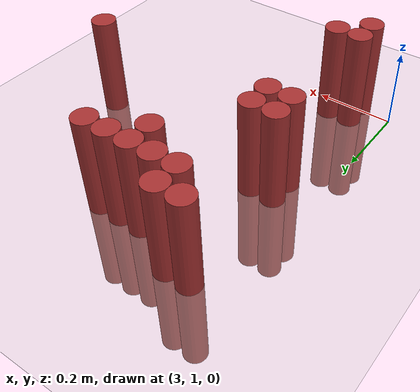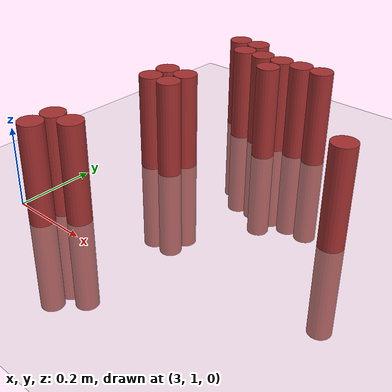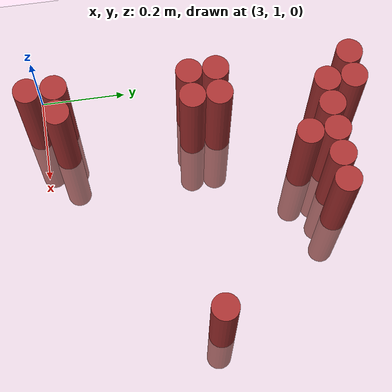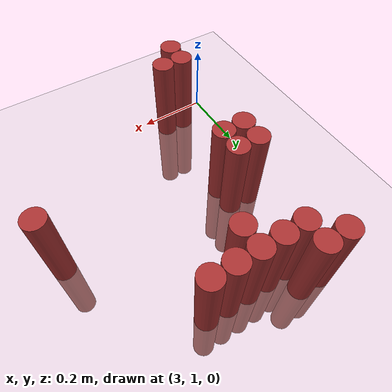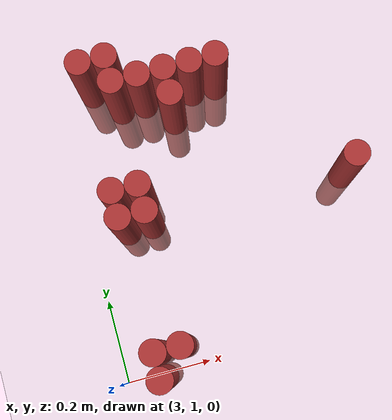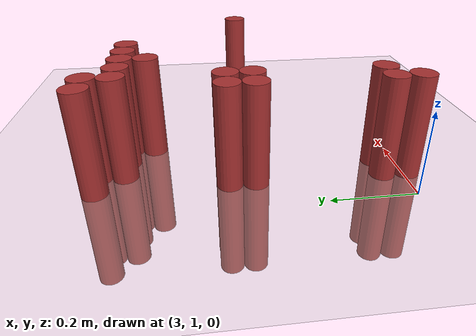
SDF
<sdf version="1.6">
 <world name="default">
  <model name="ground_plane">
   <static>1</static>
   <link name="link">
    <collision name="collision">
     <geometry><plane><normal>0 0 1</normal><size>100 100</size></plane></geometry>
     <surface><friction><ode><mu>100</mu><mu2>50</mu2></ode></friction></surface>
    </collision>
    <visual name="visual">
     <cast_shadows>0</cast_shadows>
     <geometry><plane><normal>0 0 1</normal><size>100 100</size></plane></geometry>
     <material>
      <script><uri>file://media/materials/scripts/gazebo.material</uri><name>Gazebo/Grey</name></script>
     </material>
    </visual>
   </link>
  </model>
  <model name="unit_cylinder_131">
   <static>1</static>
   <pose>3.090000 1.710000 0.000000 0.000000 0.000000 0.000000</pose>
   <link name="link">
    <inertial>
     <mass>1</mass>
     <inertia><ixx>0.145833</ixx><ixy>0</ixy><ixz>0</ixz><iyy>0.145833</iyy><iyz>0</iyz><izz>0.125</izz></inertia>
    </inertial>
    <collision name="collision">
     <geometry><cylinder><radius>0.030000</radius><length>0.5</length></cylinder></geometry>
    </collision>
    <visual name="visual">
     <geometry><cylinder><radius>0.030000</radius><length>0.5</length></cylinder></geometry>
     <material>
      <ambient>0.648000 0.192000 0.192000 1</ambient>
      <diffuse>0.648000 0.192000 0.192000 1</diffuse>
     </material>
     <material>
      <script><name>Gazebo/Grey</name><uri>file://media/materials/scripts/gazebo.material</uri></script>
     </material>
    </visual>
   </link>
  </model>
  <model name="unit_cylinder_132">
   <static>1</static>
   <pose>3.150000 1.710000 0.000000 0.000000 0.000000 0.000000</pose>
   <link name="link">
    <inertial>
     <mass>1</mass>
     <inertia><ixx>0.145833</ixx><ixy>0</ixy><ixz>0</ixz><iyy>0.145833</iyy><iyz>0</iyz><izz>0.125</izz></inertia>
    </inertial>
    <collision name="collision">
     <geometry><cylinder><radius>0.030000</radius><length>0.5</length></cylinder></geometry>
    </collision>
    <visual name="visual">
     <geometry><cylinder><radius>0.030000</radius><length>0.5</length></cylinder></geometry>
     <material>
      <ambient>0.648000 0.192000 0.192000 1</ambient>
      <diffuse>0.648000 0.192000 0.192000 1</diffuse>
     </material>
     <material>
      <script><name>Gazebo/Grey</name><uri>file://media/materials/scripts/gazebo.material</uri></script>
     </material>
    </visual>
   </link>
  </model>
  <model name="unit_cylinder_137">
   <static>1</static>
   <pose>3.150000 1.650000 0.000000 0.000000 0.000000 0.000000</pose>
   <link name="link">
    <inertial>
     <mass>1</mass>
     <inertia><ixx>0.145833</ixx><ixy>0</ixy><ixz>0</ixz><iyy>0.145833</iyy><iyz>0</iyz><izz>0.125</izz></inertia>
    </inertial>
    <collision name="collision">
     <geometry><cylinder><radius>0.030000</radius><length>0.5</length></cylinder></geometry>
    </collision>
    <visual name="visual">
     <geometry><cylinder><radius>0.030000</radius><length>0.5</length></cylinder></geometry>
     <material>
      <ambient>0.648000 0.192000 0.192000 1</ambient>
      <diffuse>0.648000 0.192000 0.192000 1</diffuse>
     </material>
     <material>
      <script><name>Gazebo/Grey</name><uri>file://media/materials/scripts/gazebo.material</uri></script>
     </material>
    </visual>
   </link>
  </model>
  <model name="unit_cylinder_138">
   <static>1</static>
   <pose>3.210000 1.650000 0.000000 0.000000 0.000000 0.000000</pose>
   <link name="link">
    <inertial>
     <mass>1</mass>
     <inertia><ixx>0.145833</ixx><ixy>0</ixy><ixz>0</ixz><iyy>0.145833</iyy><iyz>0</iyz><izz>0.125</izz></inertia>
    </inertial>
    <collision name="collision">
     <geometry><cylinder><radius>0.030000</radius><length>0.5</length></cylinder></geometry>
    </collision>
    <visual name="visual">
     <geometry><cylinder><radius>0.030000</radius><length>0.5</length></cylinder></geometry>
     <material>
      <ambient>0.648000 0.192000 0.192000 1</ambient>
      <diffuse>0.648000 0.192000 0.192000 1</diffuse>
     </material>
     <material>
      <script><name>Gazebo/Grey</name><uri>file://media/materials/scripts/gazebo.material</uri></script>
     </material>
    </visual>
   </link>
  </model>
  <model name="unit_cylinder_139">
   <static>1</static>
   <pose>3.270000 1.650000 0.000000 0.000000 0.000000 0.000000</pose>
   <link name="link">
    <inertial>
     <mass>1</mass>
     <inertia><ixx>0.145833</ixx><ixy>0</ixy><ixz>0</ixz><iyy>0.145833</iyy><iyz>0</iyz><izz>0.125</izz></inertia>
    </inertial>
    <collision name="collision">
     <geometry><cylinder><radius>0.030000</radius><length>0.5</length></cylinder></geometry>
    </collision>
    <visual name="visual">
     <geometry><cylinder><radius>0.030000</radius><length>0.5</length></cylinder></geometry>
     <material>
      <ambient>0.648000 0.192000 0.192000 1</ambient>
      <diffuse>0.648000 0.192000 0.192000 1</diffuse>
     </material>
     <material>
      <script><name>Gazebo/Grey</name><uri>file://media/materials/scripts/gazebo.material</uri></script>
     </material>
    </visual>
   </link>
  </model>
  <model name="unit_cylinder_140">
   <static>1</static>
   <pose>3.330000 1.650000 0.000000 0.000000 0.000000 0.000000</pose>
   <link name="link">
    <inertial>
     <mass>1</mass>
     <inertia><ixx>0.145833</ixx><ixy>0</ixy><ixz>0</ixz><iyy>0.145833</iyy><iyz>0</iyz><izz>0.125</izz></inertia>
    </inertial>
    <collision name="collision">
     <geometry><cylinder><radius>0.030000</radius><length>0.5</length></cylinder></geometry>
    </collision>
    <visual name="visual">
     <geometry><cylinder><radius>0.030000</radius><length>0.5</length></cylinder></geometry>
     <material>
      <ambient>0.648000 0.192000 0.192000 1</ambient>
      <diffuse>0.648000 0.192000 0.192000 1</diffuse>
     </material>
     <material>
      <script><name>Gazebo/Grey</name><uri>file://media/materials/scripts/gazebo.material</uri></script>
     </material>
    </visual>
   </link>
  </model>
  <model name="unit_cylinder_141">
   <static>1</static>
   <pose>3.390000 1.650000 0.000000 0.000000 0.000000 0.000000</pose>
   <link name="link">
    <inertial>
     <mass>1</mass>
     <inertia><ixx>0.145833</ixx><ixy>0</ixy><ixz>0</ixz><iyy>0.145833</iyy><iyz>0</iyz><izz>0.125</izz></inertia>
    </inertial>
    <collision name="collision">
     <geometry><cylinder><radius>0.030000</radius><length>0.5</length></cylinder></geometry>
    </collision>
    <visual name="visual">
     <geometry><cylinder><radius>0.030000</radius><length>0.5</length></cylinder></geometry>
     <material>
      <ambient>0.648000 0.192000 0.192000 1</ambient>
      <diffuse>0.648000 0.192000 0.192000 1</diffuse>
     </material>
     <material>
      <script><name>Gazebo/Grey</name><uri>file://media/materials/scripts/gazebo.material</uri></script>
     </material>
    </visual>
   </link>
  </model>
  <model name="unit_cylinder_145">
   <static>1</static>
   <pose>3.270000 1.590000 0.000000 0.000000 0.000000 0.000000</pose>
   <link name="link">
    <inertial>
     <mass>1</mass>
     <inertia><ixx>0.145833</ixx><ixy>0</ixy><ixz>0</ixz><iyy>0.145833</iyy><iyz>0</iyz><izz>0.125</izz></inertia>
    </inertial>
    <collision name="collision">
     <geometry><cylinder><radius>0.030000</radius><length>0.5</length></cylinder></geometry>
    </collision>
    <visual name="visual">
     <geometry><cylinder><radius>0.030000</radius><length>0.5</length></cylinder></geometry>
     <material>
      <ambient>0.648000 0.192000 0.192000 1</ambient>
      <diffuse>0.648000 0.192000 0.192000 1</diffuse>
     </material>
     <material>
      <script><name>Gazebo/Grey</name><uri>file://media/materials/scripts/gazebo.material</uri></script>
     </material>
    </visual>
   </link>
  </model>
  <model name="unit_cylinder_156">
   <static>1</static>
   <pose>3.090000 1.410000 0.000000 0.000000 0.000000 0.000000</pose>
   <link name="link">
    <inertial>
     <mass>1</mass>
     <inertia><ixx>0.145833</ixx><ixy>0</ixy><ixz>0</ixz><iyy>0.145833</iyy><iyz>0</iyz><izz>0.125</izz></inertia>
    </inertial>
    <collision name="collision">
     <geometry><cylinder><radius>0.030000</radius><length>0.5</length></cylinder></geometry>
    </collision>
    <visual name="visual">
     <geometry><cylinder><radius>0.030000</radius><length>0.5</length></cylinder></geometry>
     <material>
      <ambient>0.648000 0.192000 0.192000 1</ambient>
      <diffuse>0.648000 0.192000 0.192000 1</diffuse>
     </material>
     <material>
      <script><name>Gazebo/Grey</name><uri>file://media/materials/scripts/gazebo.material</uri></script>
     </material>
    </visual>
   </link>
  </model>
  <model name="unit_cylinder_157">
   <static>1</static>
   <pose>3.150000 1.410000 0.000000 0.000000 0.000000 0.000000</pose>
   <link name="link">
    <inertial>
     <mass>1</mass>
     <inertia><ixx>0.145833</ixx><ixy>0</ixy><ixz>0</ixz><iyy>0.145833</iyy><iyz>0</iyz><izz>0.125</izz></inertia>
    </inertial>
    <collision name="collision">
     <geometry><cylinder><radius>0.030000</radius><length>0.5</length></cylinder></geometry>
    </collision>
    <visual name="visual">
     <geometry><cylinder><radius>0.030000</radius><length>0.5</length></cylinder></geometry>
     <material>
      <ambient>0.648000 0.192000 0.192000 1</ambient>
      <diffuse>0.648000 0.192000 0.192000 1</diffuse>
     </material>
     <material>
      <script><name>Gazebo/Grey</name><uri>file://media/materials/scripts/gazebo.material</uri></script>
     </material>
    </visual>
   </link>
  </model>
  <model name="unit_cylinder_163">
   <static>1</static>
   <pose>3.090000 1.350000 0.000000 0.000000 0.000000 0.000000</pose>
   <link name="link">
    <inertial>
     <mass>1</mass>
     <inertia><ixx>0.145833</ixx><ixy>0</ixy><ixz>0</ixz><iyy>0.145833</iyy><iyz>0</iyz><izz>0.125</izz></inertia>
    </inertial>
    <collision name="collision">
     <geometry><cylinder><radius>0.030000</radius><length>0.5</length></cylinder></geometry>
    </collision>
    <visual name="visual">
     <geometry><cylinder><radius>0.030000</radius><length>0.5</length></cylinder></geometry>
     <material>
      <ambient>0.648000 0.192000 0.192000 1</ambient>
      <diffuse>0.648000 0.192000 0.192000 1</diffuse>
     </material>
     <material>
      <script><name>Gazebo/Grey</name><uri>file://media/materials/scripts/gazebo.material</uri></script>
     </material>
    </visual>
   </link>
  </model>
  <model name="unit_cylinder_164">
   <static>1</static>
   <pose>3.150000 1.350000 0.000000 0.000000 0.000000 0.000000</pose>
   <link name="link">
    <inertial>
     <mass>1</mass>
     <inertia><ixx>0.145833</ixx><ixy>0</ixy><ixz>0</ixz><iyy>0.145833</iyy><iyz>0</iyz><izz>0.125</izz></inertia>
    </inertial>
    <collision name="collision">
     <geometry><cylinder><radius>0.030000</radius><length>0.5</length></cylinder></geometry>
    </collision>
    <visual name="visual">
     <geometry><cylinder><radius>0.030000</radius><length>0.5</length></cylinder></geometry>
     <material>
      <ambient>0.648000 0.192000 0.192000 1</ambient>
      <diffuse>0.648000 0.192000 0.192000 1</diffuse>
     </material>
     <material>
      <script><name>Gazebo/Grey</name><uri>file://media/materials/scripts/gazebo.material</uri></script>
     </material>
    </visual>
   </link>
  </model>
  <model name="unit_cylinder_165">
   <static>1</static>
   <pose>3.630000 1.350000 0.000000 0.000000 0.000000 0.000000</pose>
   <link name="link">
    <inertial>
     <mass>1</mass>
     <inertia><ixx>0.145833</ixx><ixy>0</ixy><ixz>0</ixz><iyy>0.145833</iyy><iyz>0</iyz><izz>0.125</izz></inertia>
    </inertial>
    <collision name="collision">
     <geometry><cylinder><radius>0.030000</radius><length>0.5</length></cylinder></geometry>
    </collision>
    <visual name="visual">
     <geometry><cylinder><radius>0.030000</radius><length>0.5</length></cylinder></geometry>
     <material>
      <ambient>0.648000 0.192000 0.192000 1</ambient>
      <diffuse>0.648000 0.192000 0.192000 1</diffuse>
     </material>
     <material>
      <script><name>Gazebo/Grey</name><uri>file://media/materials/scripts/gazebo.material</uri></script>
     </material>
    </visual>
   </link>
  </model>
  <model name="unit_cylinder_175">
   <static>1</static>
   <pose>3.090000 1.050000 0.000000 0.000000 0.000000 0.000000</pose>
   <link name="link">
    <inertial>
     <mass>1</mass>
     <inertia><ixx>0.145833</ixx><ixy>0</ixy><ixz>0</ixz><iyy>0.145833</iyy><iyz>0</iyz><izz>0.125</izz></inertia>
    </inertial>
    <collision name="collision">
     <geometry><cylinder><radius>0.030000</radius><length>0.5</length></cylinder></geometry>
    </collision>
    <visual name="visual">
     <geometry><cylinder><radius>0.030000</radius><length>0.5</length></cylinder></geometry>
     <material>
      <ambient>0.648000 0.192000 0.192000 1</ambient>
      <diffuse>0.648000 0.192000 0.192000 1</diffuse>
     </material>
     <material>
      <script><name>Gazebo/Grey</name><uri>file://media/materials/scripts/gazebo.material</uri></script>
     </material>
    </visual>
   </link>
  </model>
  <model name="unit_cylinder_176">
   <static>1</static>
   <pose>3.150000 1.050000 0.000000 0.000000 0.000000 0.000000</pose>
   <link name="link">
    <inertial>
     <mass>1</mass>
     <inertia><ixx>0.145833</ixx><ixy>0</ixy><ixz>0</ixz><iyy>0.145833</iyy><iyz>0</iyz><izz>0.125</izz></inertia>
    </inertial>
    <collision name="collision">
     <geometry><cylinder><radius>0.030000</radius><length>0.5</length></cylinder></geometry>
    </collision>
    <visual name="visual">
     <geometry><cylinder><radius>0.030000</radius><length>0.5</length></cylinder></geometry>
     <material>
      <ambient>0.648000 0.192000 0.192000 1</ambient>
      <diffuse>0.648000 0.192000 0.192000 1</diffuse>
     </material>
     <material>
      <script><name>Gazebo/Grey</name><uri>file://media/materials/scripts/gazebo.material</uri></script>
     </material>
    </visual>
   </link>
  </model>
  <model name="unit_cylinder_181">
   <static>1</static>
   <pose>3.090000 0.990000 0.000000 0.000000 0.000000 0.000000</pose>
   <link name="link">
    <inertial>
     <mass>1</mass>
     <inertia><ixx>0.145833</ixx><ixy>0</ixy><ixz>0</ixz><iyy>0.145833</iyy><iyz>0</iyz><izz>0.125</izz></inertia>
    </inertial>
    <collision name="collision">
     <geometry><cylinder><radius>0.030000</radius><length>0.5</length></cylinder></geometry>
    </collision>
    <visual name="visual">
     <geometry><cylinder><radius>0.030000</radius><length>0.5</length></cylinder></geometry>
     <material>
      <ambient>0.648000 0.192000 0.192000 1</ambient>
      <diffuse>0.648000 0.192000 0.192000 1</diffuse>
     </material>
     <material>
      <script><name>Gazebo/Grey</name><uri>file://media/materials/scripts/gazebo.material</uri></script>
     </material>
    </visual>
   </link>
  </model>
 </world>
</sdf>
